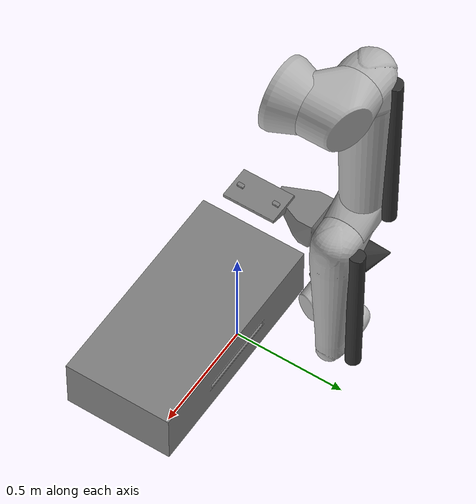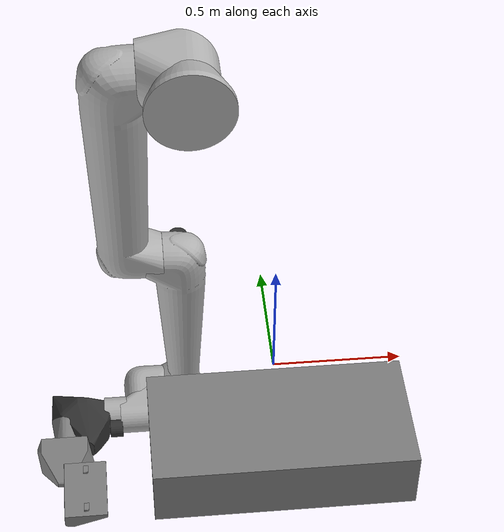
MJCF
<mujoco model="metalman">
    <compiler angle="radian" meshdir="meshes/" />
    <size njmax="500" nconmax="100" />
    <asset>
        <mesh name="base" file="ur20/collision/base.stl" scale="1.3 1.3 1.3" />
        <mesh name="shoulder" file="ur20/collision/shoulder.stl" scale="1.3 1.3 1.3" />
        <mesh name="upperarm" file="ur20/collision/upperarm.stl" scale="1.3 1.3 1" />
        <mesh name="forearm" file="ur20/collision/forearm.stl" scale="1.3 1.3 1" />
        <mesh name="wrist1" file="ur20/collision/wrist1.stl" scale="1.3 1.3 1.3" />
        <mesh name="wrist2" file="ur20/collision/wrist2.stl" scale="1.3 1.3 1.3" />
        <mesh name="wrist3" file="ur20/collision/wrist3.stl" scale="1.3 1.3 1.3" />
        <mesh name="extender" file="rest/collision/extender.stl" />
        <mesh name="rotary" file="rest/collision/rotary.stl" />
        <mesh name="bracket_gripper" file="rest/collision/bracket_gripper.stl" />
        <mesh name="harmon_bracket" file="rest/collision/harmon_bracket.stl" />
        <mesh name="bolt" file="rest/collision/bolt.stl" />
        <mesh name="channel_and_concrete_block" file="rest/collision/channel_and_concrete_block.stl" />
    </asset>
    <worldbody>
        <geom pos="-0.3 0 1.27" quat="-0.5 0.5 -0.5 -0.5" type="mesh" rgba="0.7 0.7 0.7 1" mesh="base" />
        <geom pos="0 0 -0.15" type="mesh" mesh="channel_and_concrete_block" />
        <body name="left_shoulder_link" pos="-0.3 0.2363 1.27" quat="-0.5 0.5 0.5 0.5">
            <inertial pos="0 0 0" mass="16.343" diaginertia="0.0661333 0.0661333 0.0459647" />
            <joint name="left_shoulder_pan_joint" pos="0 0 0" axis="0 0 1" limited="true" range="-6.28319 6.28319" />
            <geom quat="0 0 0 1" type="mesh" rgba="0.7 0.7 0.7 1" mesh="shoulder" />
            <body name="left_upper_arm_link" pos="0 0 0" quat="0.707107 0.707107 0 0">
                <inertial pos="-0.426 0.0109592 0.275" quat="0 0.707107 0 0.707107" mass="32.9109" diaginertia="2.06924 2.03352 0.12107" />
                <joint name="left_shoulder_lift_joint" pos="0 0 0" axis="0 0 1" limited="true" range="-6.28319 6.28319" />
                <geom pos="0 0 0.26" quat="0.5 0.5 -0.5 -0.5" type="mesh" rgba="0.7 0.7 0.7 1" mesh="upperarm" />
                <geom size="0.035 0.426" pos="-0.426 0.11 0.275" quat="0 0.707107 0 0.707107" type="cylinder" rgba="0.2 0.2 0.2 1" />
                <body name="left_forearm_link" pos="-0.862 0 0">
                    <inertial pos="-0.36435 0.0288748 0.043" quat="0 0.707107 0 0.707107" mass="10.6834" diaginertia="0.509706 0.484681 0.0489029" />
                    <joint name="left_elbow_joint" pos="0 0 0" axis="0 0 1" limited="true" range="-3.14159 3.14159" />
                    <geom pos="0 0 0.043" quat="0.5 0.5 -0.5 -0.5" type="mesh" rgba="0.7 0.7 0.7 1" mesh="forearm" />
                    <geom size="0.035 0.36435" pos="-0.36435 0.11 0.043" quat="0 0.707107 0 0.707107" type="cylinder" rgba="0.2 0.2 0.2 1" />
                    <body name="left_wrist_1_link" pos="-0.7287 0 0.201">
                        <inertial pos="0 0 0" quat="0.5 0.5 -0.5 0.5" mass="3.054" diaginertia="0.00858937 0.00795948 0.00795948" />
                        <joint name="left_wrist_1_joint" pos="0 0 0" axis="0 0 1" limited="true" range="-6.28319 6.28319" />
                        <geom pos="0 0 -0.0775" quat="0.707107 0.707107 0 0" type="mesh" rgba="0.7 0.7 0.7 1" mesh="wrist1" />
                        <body name="left_wrist_2_link" pos="0 -0.1593 -3.2673e-11" quat="0.707107 0.707107 0 0">
                            <inertial pos="0 0 0" quat="0.5 0.5 -0.5 0.5" mass="3.126" diaginertia="0.00879187 0.00814713 0.00814713" />
                            <joint name="left_wrist_2_joint" pos="0 0 0" axis="0 0 1" limited="true" range="-6.28319 6.28319" />
                            <geom pos="0 0 -0.0749" type="mesh" rgba="0.7 0.7 0.7 1" mesh="wrist2" />
                            <body name="left_wrist_3_link" pos="0 0.1543 -3.16475e-11" quat="0.707107 -0.707107 0 0">
                                <inertial pos="0.0280045 -0.186789 0.127233" quat="0.752332 0.649403 0.0286293 0.107015" mass="12.7183" diaginertia="0.445333 0.396893 0.0808376" />
                                <joint name="left_wrist_3_joint" pos="0 0 0" axis="0 0 1" limited="true" range="-6.28319 6.28319" />
                                <geom pos="0 0 -0.07" quat="0.707107 0.707107 0 0" type="mesh" rgba="0.7 0.7 0.7 1" mesh="wrist3" />
                                <geom type="mesh" rgba="0.2 0.2 0.2 1"  mesh="extender" />
                                <geom pos="0 -0.04436 0.18" quat="0 0 -0.707107 0.707107" type="mesh" mesh="rotary" />
                                <geom pos="0 -0.18016 0.18" quat="-0.707107 -0.707107 0 0" type="mesh" mesh="bracket_gripper" />
                                <geom pos="0 -0.18016 0.18" quat="-0.707107 -0.707107 0 0" type="mesh" name="left_harmon_bracket" mesh="harmon_bracket" />
                                <geom pos="0.1344 -0.37976 0.098275" quat="-0.5 0.5 0.5 -0.5" type="mesh" name="left_bolt0" mesh="bolt" />
                                <geom pos="0.1344 -0.55756 0.098275" quat="-0.5 0.5 0.5 -0.5" type="mesh" name="left_bolt1" mesh="bolt" />
                                <geom size="0.035 0.025" pos="0 -0.08 -0.025" type="cylinder" rgba="0.2 0.2 0.2 1" />
                            </body>
                        </body>
                    </body>
                </body>
            </body>
        </body>
    </worldbody>
    <include file="actuator.xml"/>
</mujoco>

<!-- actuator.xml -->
<mujoco>
    <default>
        <default class="position">
          <position group="0" gear="1" ctrlrange="-6.28319 6.28319" ctrllimited="true"/>
        </default>

        <default class="velocity">
          <velocity group="1" gear="1" ctrllimited="true"/>
        </default>
    </default>

    <actuator>
        <position class="position" joint="left_shoulder_pan_joint" name="pan_p" kp="6e12"/>
        <velocity class="velocity" joint= "left_shoulder_pan_joint" name="pan_d" ctrlrange="-2.0943951023931953 2.0943951023931953" kv="46e6"/>

        <position class="position" joint="left_shoulder_lift_joint" name ="lift_p" kp="4e6"/>
        <velocity class="velocity" joint="left_shoulder_lift_joint" name ="lift_d" ctrlrange="-2.0943951023931953 2.0943951023931953" kv="4e3"/>

        <position class="position" joint="left_elbow_joint" name="elbow_p" ctrlrange="-3.14159 3.14159" kp="400" />
        <velocity class="velocity" joint="left_elbow_joint" name="elbow_d" ctrlrange="-2.6179938779914944 2.6179938779914944" kv="40"/>

        <position class="position" joint="left_wrist_1_joint" name="wrist1_p" kp="800"/>
        <velocity class="velocity" joint="left_wrist_1_joint" name="wrist1_d" ctrlrange="-3.6651914291880923 3.6651914291880923" kv="80"/>

        <position class="position" joint="left_wrist_2_joint" name="wrist2_p" kp="400"/>
        <velocity class="velocity" joint="left_wrist_2_joint" name="wrist2_d" ctrlrange="-3.6651914291880923 3.6651914291880923" kv="40"/>

        <position class="position" joint="left_wrist_3_joint" name="wrist3_p" kp="400"/>
        <velocity class="velocity" joint="left_wrist_3_joint" name="wrist3_d" ctrlrange="-3.6651914291880923 3.6651914291880923" kv="40"/>

    </actuator>
</mujoco>
